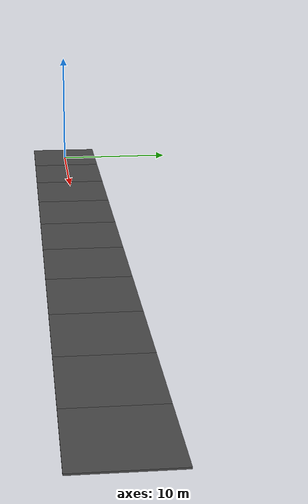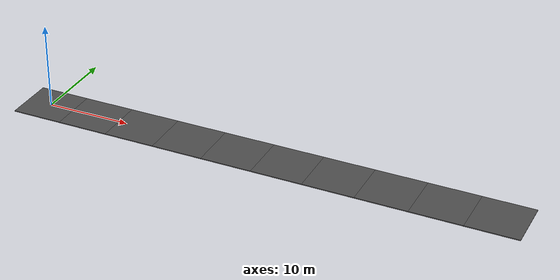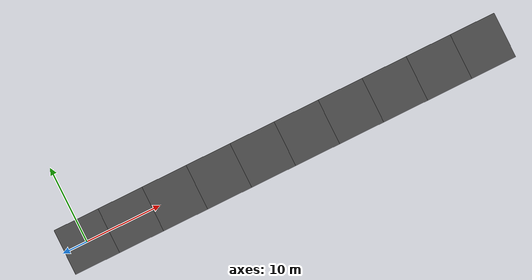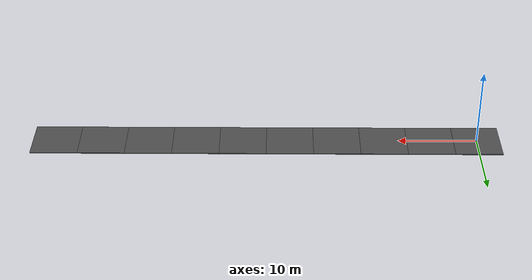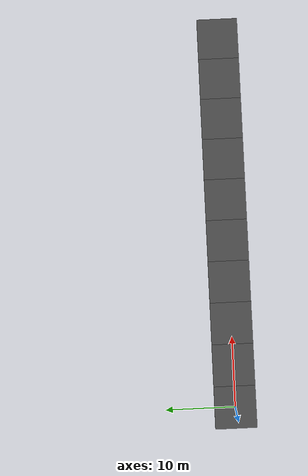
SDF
<sdf version="1.4">
 <world name="myworld">
  <scene><shadows>0</shadows></scene>
  <include><uri>model://sun</uri></include>
  <include><uri>model://road_1</uri><name>r1</name></include>
  <include><uri>model://road_1</uri><name>r2</name><pose>6 0 0 0 0 0</pose></include>
  <include><uri>model://road_1</uri><name>r3</name><pose>12 0 0 0 0 0</pose></include>
  <include><uri>model://road_1</uri><name>r4</name><pose>18 0 0 0 0 0</pose></include>
  <include><uri>model://road_2</uri><name>r5</name><pose>24 0 0 0 0 0</pose></include>
  <include><uri>model://road_1</uri><name>r6</name><pose>30 0 0 0 0 0</pose></include>
  <include><uri>model://road_1</uri><name>r7</name><pose>36 0 0 0 0 0</pose></include>
  <include><uri>model://road_1</uri><name>r8</name><pose>42 0 0 0 0 0</pose></include>
  <include><uri>model://road_2</uri><name>r9</name><pose>48 0 0 0 0 0</pose></include>
  <include><uri>model://road_1</uri><name>r10</name><pose>54 0 0 0 0 0</pose></include>
 </world>
</sdf>

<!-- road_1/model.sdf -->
<sdf version="1.5">
  <model name="road_1">
    <static>true</static>
    <link name="link">
      <collision name="collision">
        <geometry>
          <box>
            <size>6 6 .1</size>
          </box>
        </geometry>
      </collision>
      <visual name="visual">
        <cast_shadows>false</cast_shadows>
        <geometry>
          <box>
            <size>6 6 .1</size>
          </box>
        </geometry>
        <material>
          <script>
            <uri>model://road_1/materials/scripts</uri>
            <uri>model://road_1/materials/textures</uri>
            <name>vrc/road_1</name>
          </script>
        </material>
      </visual>
    </link>
  </model>
</sdf>

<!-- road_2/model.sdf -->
<sdf version="1.5">
  <model name="road_2">
    <static>true</static>
    <link name="link">
      <collision name="collision">
        <geometry>
          <box>
            <size>6 6 .1</size>
          </box>
        </geometry>
      </collision>
      <visual name="visual">
        <cast_shadows>false</cast_shadows>
        <geometry>
          <box>
            <size>6 6 .1</size>
          </box>
        </geometry>
        <material>
          <script>
            <uri>model://road_2/materials/scripts</uri>
            <uri>model://road_2/materials/textures</uri>
            <name>vrc/road_2</name>
          </script>
        </material>
      </visual>
    </link>
  </model>
</sdf>
